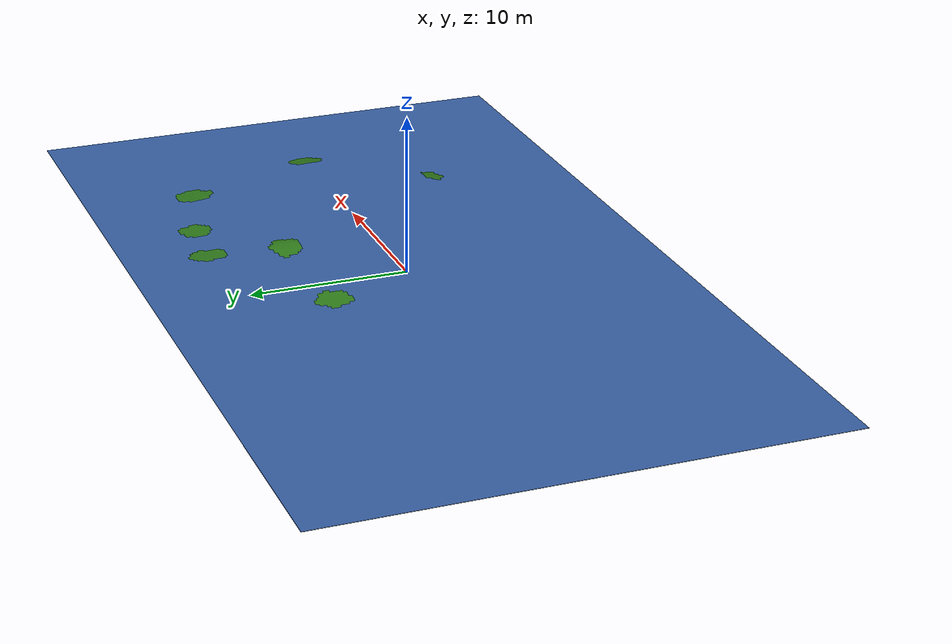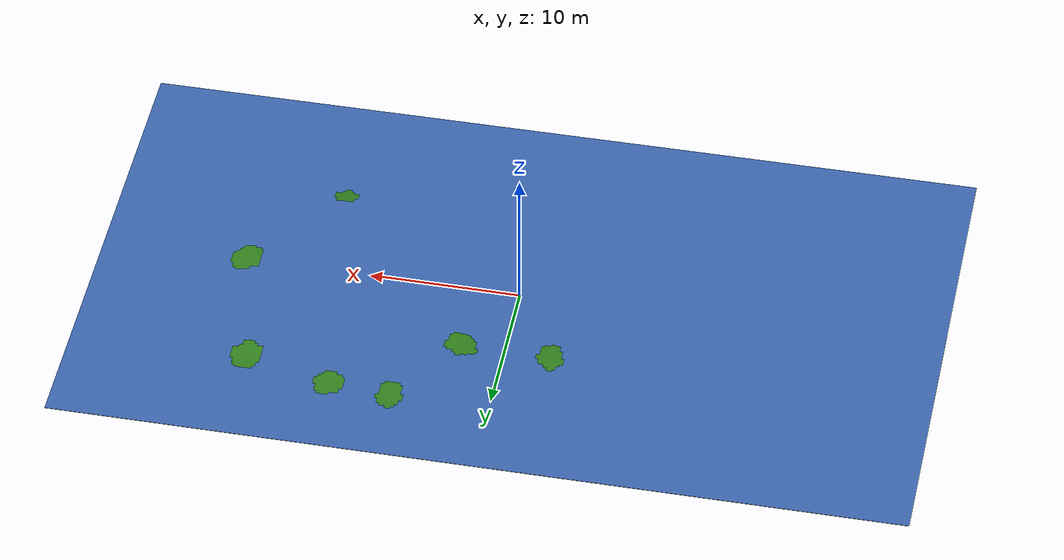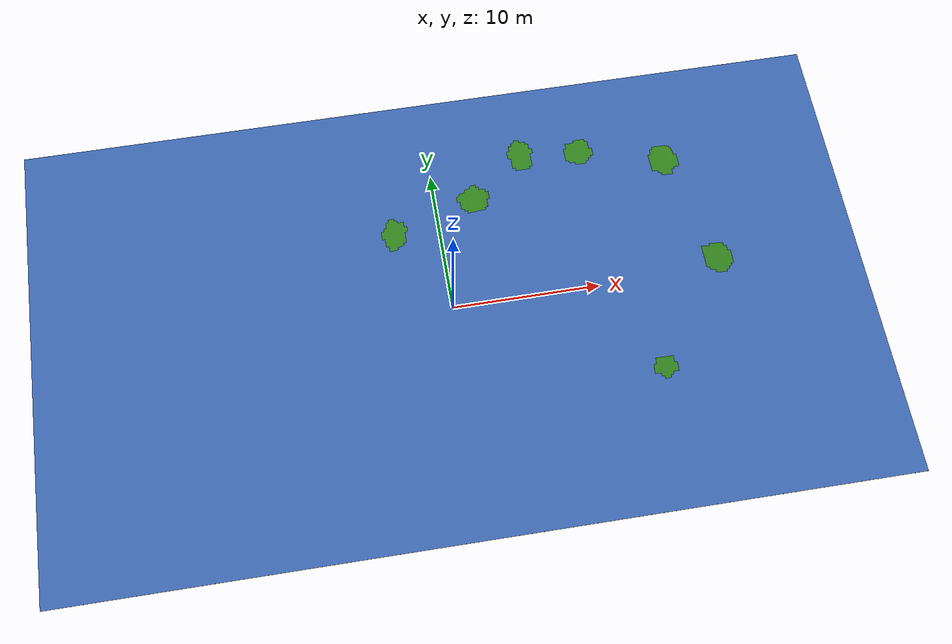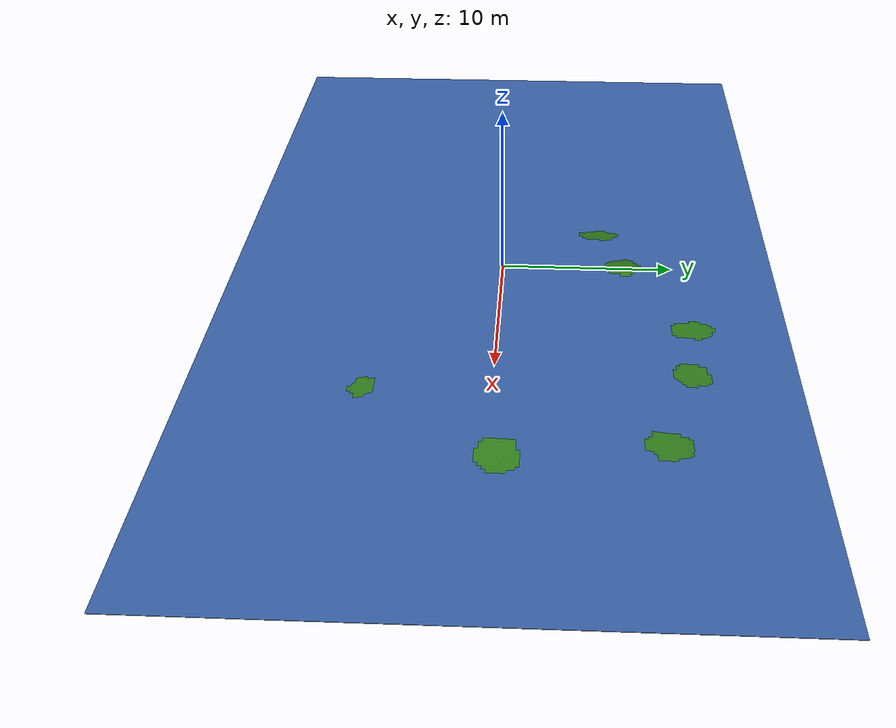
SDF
<sdf version="1.8">
 <world name="semantic_segmentation_world">
  <model name="heightmap_terrain_collision">
   <static>true</static>
   <link name="terrain_collision_link">
    <collision name="terrain_collision">
     <geometry>
      <heightmap>
       <uri>file://assets/quad_height.png</uri>
       <size>51.2 51.2 2.500000000</size>
       <pos>0 0 0</pos>
      </heightmap>
     </geometry>
     <surface><friction><ode><mu>1.1</mu><mu2>1.1</mu2></ode></friction></surface>
    </collision>
   </link>
  </model>
  <model name="flat_ground">
   <static>true</static>
   <link name="ground_link">
    <collision name="ground_collision">
     <geometry><box><size>56.000000 32.000000 0.030000</size></box></geometry>
     <surface><friction><ode><mu>1.0</mu><mu2>1.0</mu2></ode></friction></surface>
    </collision>
    <visual name="ground_visual">
     <geometry><box><size>56.000000 32.000000 0.030000</size></box></geometry>
     <material>
      <ambient>0.15839999999999999 0.2736 0.46799999999999997 1.0</ambient>
      <diffuse>0.22 0.38 0.65 1.0</diffuse>
      <specular>0.04 0.04 0.04 1.0</specular>
      <pbr>
       <metal>
        <albedo_map>file://assets/blue_ground.jpg</albedo_map>
        <roughness>0.9</roughness>
        <metalness>0.0</metalness>
       </metal>
      </pbr>
     </material>
    </visual>
   </link>
   <plugin filename="ignition-gazebo-label-system" name="ignition::gazebo::systems::Label">
    <label>1</label>
   </plugin>
  </model>
  <model name="grass_surface">
   <static>true</static>
   <link name="grass_surface_link">
    <visual name="grass_surface_visual">
     <geometry><mesh><uri>file://assets/grass_small_patches.obj</uri></mesh></geometry>
     <material>
      <ambient>0.1296 0.34559999999999996 0.072 1.0</ambient>
      <diffuse>0.18 0.48 0.1 1.0</diffuse>
      <specular>0.04 0.04 0.04 1.0</specular>
     </material>
     <cast_shadows>false</cast_shadows>
    </visual>
   </link>
   <plugin filename="ignition-gazebo-label-system" name="ignition::gazebo::systems::Label">
    <label>2</label>
   </plugin>
  </model>
 </world>
</sdf>
